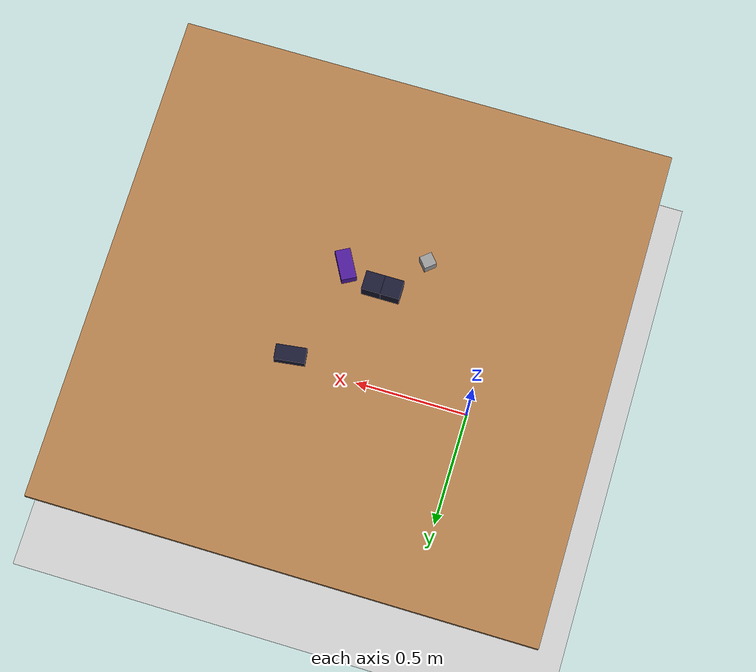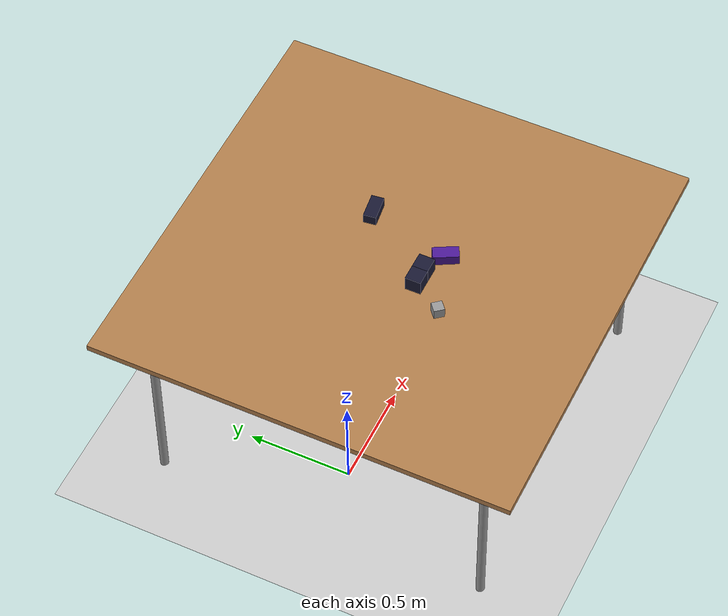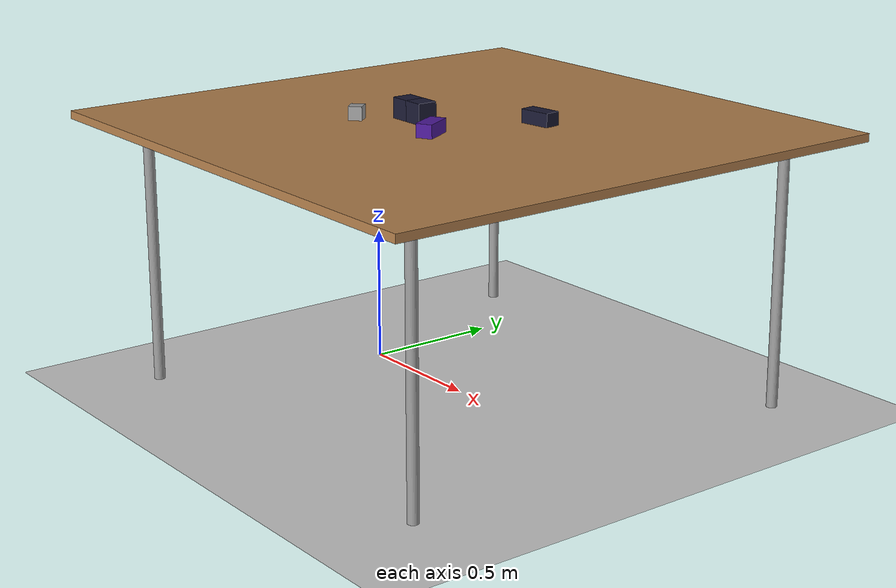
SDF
<sdf version="1.6">
 <world name="default">
  <light type="directional" name="light">
   <light_on>true</light_on>
   <pose>0 0 2 0 0 0</pose>
   <diffuse>0.5 0.5 0.5 1</diffuse>
   <specular>.1 .1 .1 1</specular>
   <cast_shadows>false</cast_shadows>
  </light>
  <include><uri>model://ground_plane</uri></include>
  <include><uri>model://sun</uri></include>
  <include><uri>model://big_table</uri><name>table</name><pose>0.5 0 0 0 0 0</pose></include>
  <include><name>cube_small</name><uri>model://cube_5cm</uri><pose>0.3 -0.3 1.03 0 0 0.7</pose></include>
  <include><name>cube_large</name><uri>model://cube_7_5cm</uri><pose>0.4 -0.15 1.03 0 0 0</pose></include>
  <include>
   <name>cube_large2</name>
   <uri>model://cube_7_5cm_red</uri>
   <pose>0.475 -0.15 1.03 0 0 0</pose>
  </include>
  <include><name>brick1</name><uri>model://brick</uri><pose>0.6 -0.2 1.03 0 0 0.5</pose></include>
  <include><name>brick2</name><uri>model://rectangle</uri><pose>0.7 0.2 1.03 0 0 1.7</pose></include>
  <physics type="ode"><real_time_update_rate>1000.0</real_time_update_rate></physics>
  <gravity>0.0 0.0 -9.81</gravity>
 </world>
</sdf>

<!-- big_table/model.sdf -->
<sdf version="1.5">
  <model name="big_table">
    <static>true</static>
    <link name="link">
      <collision name="surface">
        <pose>0 0 1.0 0 0 0</pose>
        <geometry>
          <box>
            <size>2 2 0.03</size>
          </box>
        </geometry>
        <surface>
          <friction>
            <ode>
              <mu>0.6</mu>
              <mu2>0.6</mu2>
            </ode>
          </friction>
        </surface>
      </collision>
      <visual name="visual1">
        <pose>0 0 1.0 0 0 0</pose>
        <geometry>
          <box>
            <size>2 2 0.03</size>
          </box>
        </geometry>
        <material>
          <script>
            <uri>file://media/materials/scripts/gazebo.material</uri>
            <name>Gazebo/Wood</name>
          </script>
        </material>
      </visual>
      <collision name="front_left_leg">
        <pose>0.8 0.8 0.5 0 0 0</pose>
        <geometry>
          <cylinder>
            <radius>0.02</radius>
            <length>1.0</length>
          </cylinder>
        </geometry>
      </collision>
      <visual name="front_left_leg">
        <pose>0.8 0.8 0.5 0 0 0</pose>
        <geometry>
          <cylinder>
            <radius>0.02</radius>
            <length>1.0</length>
          </cylinder>
        </geometry>
        <material>
          <script>
            <uri>file://media/materials/scripts/gazebo.material</uri>
            <name>Gazebo/Grey</name>
          </script>
        </material>
      </visual>
      <collision name="front_right_leg">
        <pose>0.8 -0.8 0.5 0 0 0</pose>
        <geometry>
          <cylinder>
            <radius>0.02</radius>
            <length>1.0</length>
          </cylinder>
        </geometry>
      </collision>
      <visual name="front_right_leg">
        <pose>0.8 -0.8 0.5 0 0 0</pose>
        <geometry>
          <cylinder>
            <radius>0.02</radius>
            <length>1.0</length>
          </cylinder>
        </geometry>
        <material>
          <script>
            <uri>file://media/materials/scripts/gazebo.material</uri>
            <name>Gazebo/Grey</name>
          </script>
        </material>
      </visual>
      <collision name="back_right_leg">
        <pose>-0.8 -0.8 0.5 0 0 0</pose>
        <geometry>
          <cylinder>
            <radius>0.02</radius>
            <length>1.0</length>
          </cylinder>
        </geometry>
      </collision>
      <visual name="back_right_leg">
        <pose>-0.8 -0.8 0.5 0 0 0</pose>
        <geometry>
          <cylinder>
            <radius>0.02</radius>
            <length>1.0</length>
          </cylinder>
        </geometry>
        <material>
          <script>
            <uri>file://media/materials/scripts/gazebo.material</uri>
            <name>Gazebo/Grey</name>
          </script>
        </material>
      </visual>
      <collision name="back_left_leg">
        <pose>-0.8 0.8 0.5 0 0 0</pose>
        <geometry>
          <cylinder>
            <radius>0.02</radius>
            <length>1.0</length>
          </cylinder>
        </geometry>
      </collision>
      <visual name="back_left_leg">
        <pose>-0.8 0.8 0.5 0 0 0</pose>
        <geometry>
          <cylinder>
            <radius>0.02</radius>
            <length>1.0</length>
          </cylinder>
        </geometry>
        <material>
          <script>
            <uri>file://media/materials/scripts/gazebo.material</uri>
            <name>Gazebo/Grey</name>
          </script>
        </material>
      </visual>
    </link>
  </model>
</sdf>

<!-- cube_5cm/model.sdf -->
<sdf version="1.5">
  <model name="cube_5cm">
    <link name="link">
      <pose>0 0 0.025 0 0 0</pose>
      <inertial>
        <mass>0.0565</mass>
        <inertia>
          <ixx>2.3541666666666672e-05</ixx>
          <ixy>0</ixy>
          <ixz>0</ixz>
          <iyy>2.3541666666666672e-05</iyy>
          <iyz>0</iyz>
          <izz>2.3541666666666672e-05</izz>
        </inertia>
      </inertial>

      <collision name="collision">
        <geometry>
          <box>
            <size>0.05 0.05 0.05</size>
          </box>
        </geometry>
        <surface>
          <contact>
            <!-- Red Pine coefficients for longitudinal axis of the wood
                 according to:
                 http://www.fpl.fs.fed.us/documnts/fplgtr/fplgtr113/ch04.pdf -->
            <poissons_ratio>0.347</poissons_ratio>
            <elastic_modulus>8.8e+09</elastic_modulus>
            <ode>
              <kp>100000</kp>
              <kd>1</kd>
              <max_vel>1.0</max_vel>
              <min_depth>0.001</min_depth>
            </ode>
          </contact>
          <friction>
            <torsional>
              <coefficient>1.0</coefficient>
              <use_patch_radius>0</use_patch_radius>
              <surface_radius>0.05</surface_radius>
            </torsional>
          </friction>
        </surface>
      </collision>

      <visual name="visual">
        <geometry>
          <box>
            <size>0.05 0.05 0.05</size>
          </box>
        </geometry>
        <material>
          <script>
            <uri>file://media/materials/scripts/gazebo.material</uri>
            <name>Gazebo/Grey</name>
          </script>
        </material>
      </visual>

    </link>
  </model>
</sdf>

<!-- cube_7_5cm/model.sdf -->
<sdf version="1.5">
  <model name="cube_7_5cm">
    <link name="link">
      <pose>0 0 0.0375 0 0 0</pose>
      <inertial>
        <mass>0.2249</mass>
        <inertia>
          <ixx>0.00021084374999999999</ixx>
          <ixy>0</ixy>
          <ixz>0</ixz>
          <iyy>0.00021084374999999999</iyy>
          <iyz>0</iyz>
          <izz>0.00021084374999999999</izz>
        </inertia>
      </inertial>

      <collision name="collision">
        <geometry>
          <box>
            <size>0.075 0.075 0.075</size>
          </box>
        </geometry>
        <surface>
          <contact>
            <!-- Red Pine coefficients for longitudinal axis of the wood
                 according to:
                 http://www.fpl.fs.fed.us/documnts/fplgtr/fplgtr113/ch04.pdf -->
            <poissons_ratio>0.347</poissons_ratio>
            <elastic_modulus>8.8e+09</elastic_modulus>
            <ode>
              <kp>100000</kp>
              <kd>100</kd>
              <max_vel>100.0</max_vel>
              <min_depth>0.001</min_depth>
            </ode>
          </contact>
          <friction>
            <torsional>
              <coefficient>1.0</coefficient>
              <use_patch_radius>0</use_patch_radius>
              <surface_radius>0.01</surface_radius>
            </torsional>
          </friction>
        </surface>
      </collision>

      <visual name="visual">
        <geometry>
          <box>
            <size>0.075 0.075 0.075</size>
          </box>
        </geometry>

        <material>
          <!-- Wheel material -->
          <ambient>1 0 0 1</ambient>
          <diffuse>0.1 0.1 0.2 1</diffuse>
          <specular>0 0 0 0</specular>
          <emissive>0 0 0 1</emissive>
        </material> <!-- End wheel material -->

      </visual>

    </link>
  </model>
</sdf>

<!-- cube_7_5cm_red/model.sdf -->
<sdf version="1.5">
  <model name="cube_7_5cm">
    <link name="link">
      <pose>0 0 0.0375 0 0 0</pose>
      <inertial>
        <mass>0.2249</mass>
        <inertia>
          <ixx>0.00021084374999999999</ixx>
          <ixy>0</ixy>
          <ixz>0</ixz>
          <iyy>0.00021084374999999999</iyy>
          <iyz>0</iyz>
          <izz>0.00021084374999999999</izz>
        </inertia>
      </inertial>

      <collision name="collision">
        <geometry>
          <box>
            <size>0.075 0.075 0.075</size>
          </box>
        </geometry>
        <surface>
          <contact>
            <!-- Red Pine coefficients for longitudinal axis of the wood
                 according to:
                 http://www.fpl.fs.fed.us/documnts/fplgtr/fplgtr113/ch04.pdf -->
            <poissons_ratio>0.347</poissons_ratio>
            <elastic_modulus>8.8e+09</elastic_modulus>
            <ode>
              <kp>100000</kp>
              <kd>100</kd>
              <max_vel>100.0</max_vel>
              <min_depth>0.001</min_depth>
            </ode>
          </contact>
          <friction>
            <torsional>
              <coefficient>1.0</coefficient>
              <use_patch_radius>0</use_patch_radius>
              <surface_radius>0.01</surface_radius>
            </torsional>
          </friction>
        </surface>
      </collision>

      <visual name="visual">
        <geometry>
          <box>
            <size>0.075 0.075 0.075</size>
          </box>
        </geometry>

        <material>
          <!-- Wheel material -->
          <ambient>0 0 1 1</ambient>
          <diffuse>0.1 0.1 0.2 1</diffuse>
          <specular>0 0 0 0</specular>
          <emissive>0 0 0 1</emissive>
        </material> <!-- End wheel material -->

      </visual>

    </link>
  </model>
</sdf>

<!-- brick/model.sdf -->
<sdf version='1.7'>
  <model name='rectangle1'>
    <link name='link'>
      <inertial>
        <mass>5</mass>
        <inertia>
          <ixx>0.00541667</ixx>
          <ixy>0</ixy>
          <ixz>0</ixz>
          <iyy>0.00308333</iyy>
          <iyz>0</iyz>
          <izz>0.00441667</izz>
        </inertia>
        <pose>0 0 0 0 -0 0</pose>
      </inertial>
      <self_collide>0</self_collide>
      <enable_wind>0</enable_wind>
      <kinematic>0</kinematic>
      <pose>0 0 0 0 -0 0</pose>
      <gravity>1</gravity>
      <visual name='visual'>
        <geometry>
          <box>
            <size>0.06 0.12 0.07</size>
          </box>
        </geometry>
        <material>
          <script>
            <uri>file://media/materials/scripts/gazebo.material</uri>
            <name>Gazebo/Indigo</name>
          </script>
          <shader type='pixel'>
            <normal_map>__default__</normal_map>
          </shader>
          <diffuse>0.7 0.7 0.7 1</diffuse>
          <specular>0.01 0.01 0.01 1</specular>
          <emissive>0 0 0 1</emissive>
        </material>
        <pose>0 0 0 0 -0 0</pose>
        <transparency>0</transparency>
        <cast_shadows>1</cast_shadows>
      </visual>
      <collision name='collision'>
        <laser_retro>0</laser_retro>
        <max_contacts>10</max_contacts>
        <pose>0 0 0 0 -0 0</pose>
        <geometry>
          <box>
            <size>0.06 0.12 0.07</size>
          </box>
        </geometry>
        <surface>
          <friction>
            <ode>
              <mu>1</mu>
              <mu2>1</mu2>
              <fdir1>0 0 0</fdir1>
              <slip1>0</slip1>
              <slip2>0</slip2>
            </ode>
            <torsional>
              <coefficient>1</coefficient>
              <patch_radius>0</patch_radius>
              <surface_radius>0</surface_radius>
              <use_patch_radius>1</use_patch_radius>
              <ode>
                <slip>0</slip>
              </ode>
            </torsional>
          </friction>
          <bounce>
            <restitution_coefficient>0</restitution_coefficient>
            <threshold>1e+06</threshold>
          </bounce>
          <contact>
            <collide_without_contact>0</collide_without_contact>
            <collide_without_contact_bitmask>1</collide_without_contact_bitmask>
            <collide_bitmask>1</collide_bitmask>
            <ode>
              <soft_cfm>0</soft_cfm>
              <soft_erp>0.2</soft_erp>
              <kp>1e+13</kp>
              <kd>1</kd>
              <max_vel>0.01</max_vel>
              <min_depth>0</min_depth>
            </ode>
            <bullet>
              <split_impulse>1</split_impulse>
              <split_impulse_penetration_threshold>-0.01</split_impulse_penetration_threshold>
              <soft_cfm>0</soft_cfm>
              <soft_erp>0.2</soft_erp>
              <kp>1e+13</kp>
              <kd>1</kd>
            </bullet>
          </contact>
        </surface>
      </collision>
    </link>
    <static>0</static>
    <allow_auto_disable>1</allow_auto_disable>
  </model>
</sdf>

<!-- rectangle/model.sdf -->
<sdf version='1.7'>
  <model name='rectangle1'>
    <link name='link'>
      <inertial>
        <mass>5</mass>
        <inertia>
          <ixx>0.00541667</ixx>
          <ixy>0</ixy>
          <ixz>0</ixz>
          <iyy>0.00308333</iyy>
          <iyz>0</iyz>
          <izz>0.00441667</izz>
        </inertia>
        <pose>0 0 0 0 -0 0</pose>
      </inertial>
      <self_collide>0</self_collide>
      <enable_wind>0</enable_wind>
      <kinematic>0</kinematic>
      <pose>0 0 0 0 -0 0</pose>
      <gravity>1</gravity>
      <visual name='visual'>
        <geometry>
          <box>
            <size>0.06 0.12 0.07</size>
          </box>
        </geometry>
      <material>
        <!-- Wheel material -->
        <ambient>0 0 0.75 0.9</ambient>
        <diffuse>0.1 0.1 0.2 1</diffuse>
        <specular>0.2 0.2 0.2 64</specular>
        <emissive>0 0 0 1</emissive>
      </material> <!-- End wheel material -->
        <pose>0 0 0 0 -0 0</pose>
        <transparency>0</transparency>
        <cast_shadows>1</cast_shadows>
      </visual>
      <collision name='collision'>
        <laser_retro>0</laser_retro>
        <max_contacts>10</max_contacts>
        <pose>0 0 0 0 -0 0</pose>
        <geometry>
          <box>
            <size>0.06 0.12 0.07</size>
          </box>
        </geometry>
        <surface>
          <friction>
            <ode>
              <mu>1</mu>
              <mu2>1</mu2>
              <fdir1>0 0 0</fdir1>
              <slip1>0</slip1>
              <slip2>0</slip2>
            </ode>
            <torsional>
              <coefficient>1</coefficient>
              <patch_radius>0</patch_radius>
              <surface_radius>0</surface_radius>
              <use_patch_radius>1</use_patch_radius>
              <ode>
                <slip>0</slip>
              </ode>
            </torsional>
          </friction>
          <bounce>
            <restitution_coefficient>0</restitution_coefficient>
            <threshold>1e+06</threshold>
          </bounce>
          <contact>
            <collide_without_contact>0</collide_without_contact>
            <collide_without_contact_bitmask>1</collide_without_contact_bitmask>
            <collide_bitmask>1</collide_bitmask>
            <ode>
              <soft_cfm>0</soft_cfm>
              <soft_erp>0.2</soft_erp>
              <kp>1e+13</kp>
              <kd>1</kd>
              <max_vel>0.01</max_vel>
              <min_depth>0</min_depth>
            </ode>
            <bullet>
              <split_impulse>1</split_impulse>
              <split_impulse_penetration_threshold>-0.01</split_impulse_penetration_threshold>
              <soft_cfm>0</soft_cfm>
              <soft_erp>0.2</soft_erp>
              <kp>1e+13</kp>
              <kd>1</kd>
            </bullet>
          </contact>
        </surface>
      </collision>
    </link>
    <static>0</static>
    <allow_auto_disable>1</allow_auto_disable>
  </model>
</sdf>
